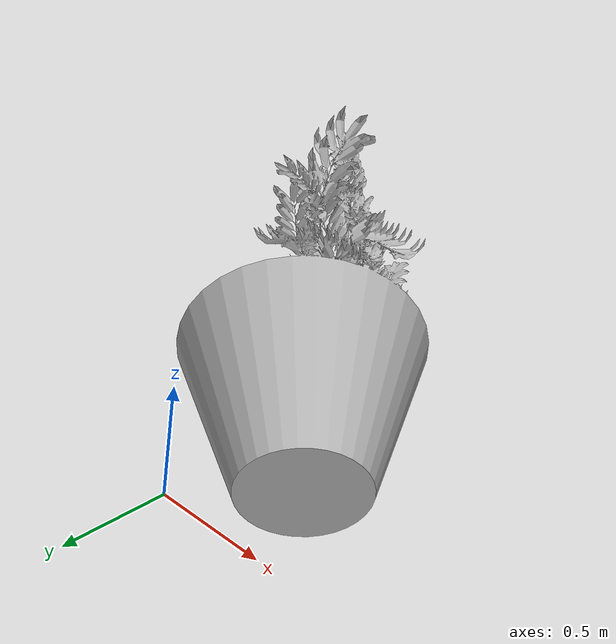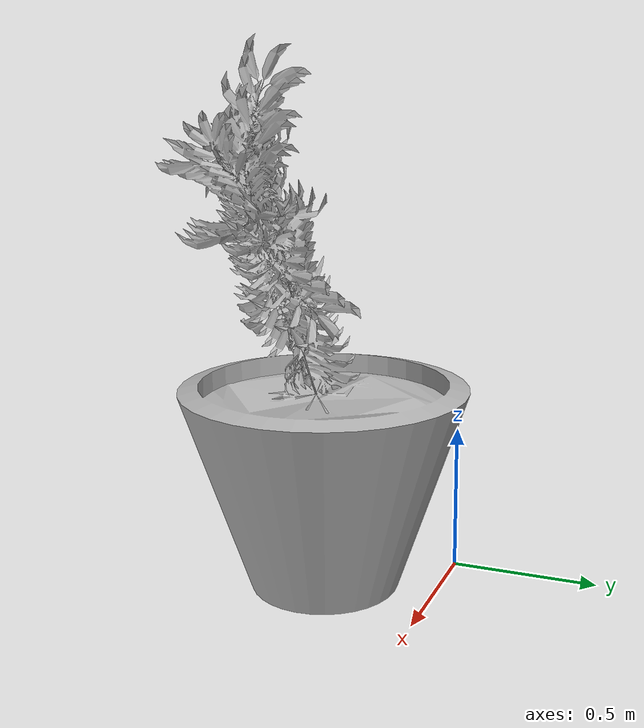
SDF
<?xml version="1.0" ?>
<sdf version="1.6">
  <model name="MAVLab Plant 1">
    <static>true</static>
    <link name="gate_link">
      <visual name="visual">
      <pose>0 0 0 1.5708 0 0</pose>
        <geometry>
          <mesh>
            <uri>model://Plant1/meshes/plant.obj</uri>
            <scale>0.25 0.25 0.25</scale>
          </mesh>
        </geometry>
      </visual>
      <collision name="collision">
      <pose>0 0 0 1.5708 0 0</pose>
        <geometry>
          <mesh>
            <uri>model://Plant1/meshes/plant.obj</uri>
            <scale>0.25 0.25 0.25</scale>
          </mesh>
        </geometry>
      </collision>
    </link>
  </model>
</sdf>
